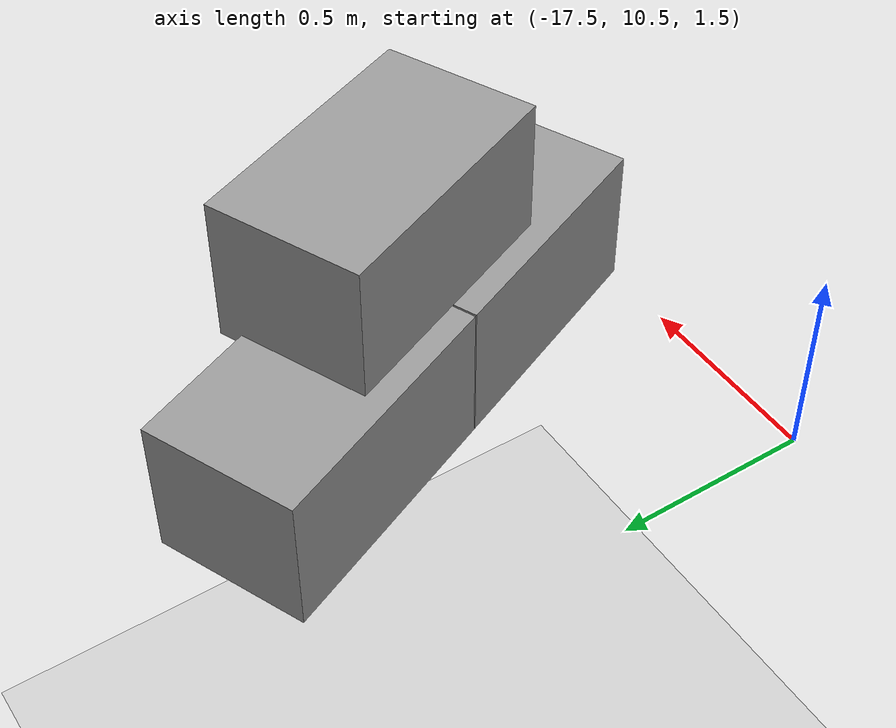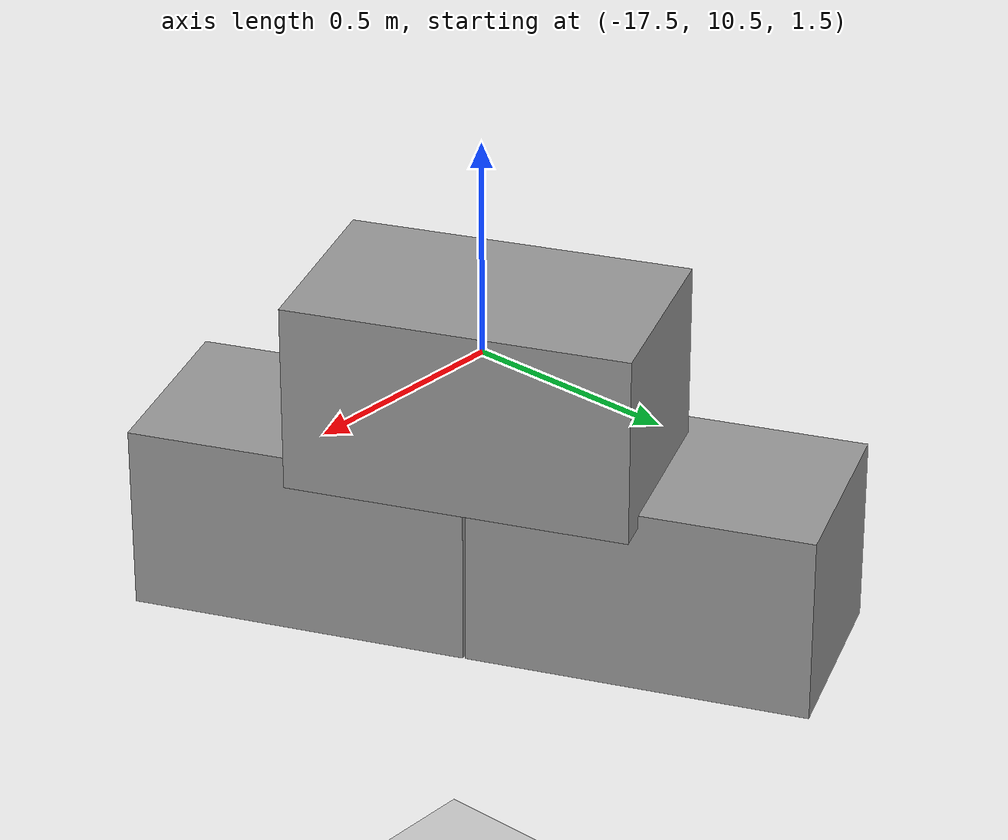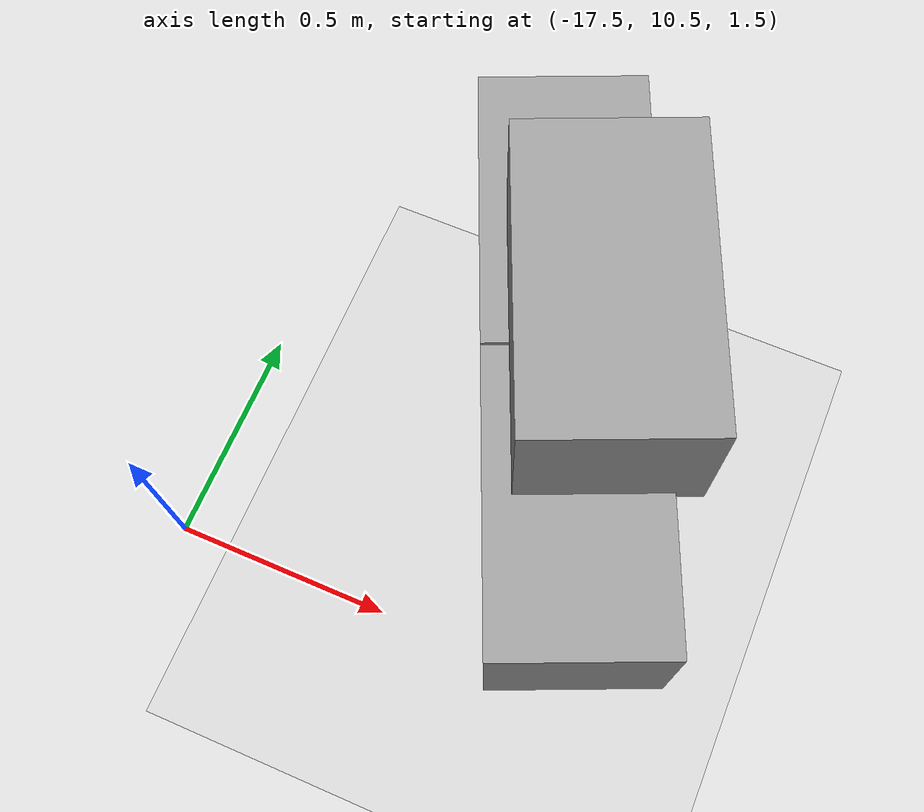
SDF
<sdf version="1.7">
 <world name="default">
  <model name="ground_plane">
   <static>1</static>
   <link name="link">
    <collision name="collision">
     <geometry><plane><normal>0 0 1</normal><size>100 100</size></plane></geometry>
     <surface>
      <contact><collide_bitmask>65535</collide_bitmask></contact>
      <friction><ode><mu>100</mu><mu2>50</mu2></ode></friction>
     </surface>
    </collision>
    <visual name="visual">
     <cast_shadows>0</cast_shadows>
     <geometry><plane><normal>0 0 1</normal><size>100 100</size></plane></geometry>
     <material>
      <script><uri>file://media/materials/scripts/gazebo.material</uri><name>Gazebo/Grey</name></script>
     </material>
    </visual>
   </link>
  </model>
  <model name="Add_Box_clone_clone_3_clone">
   <link name="link">
    <inertial>
     <mass>1</mass>
     <inertia>
      <ixx>0.166667</ixx>
      <ixy>0</ixy>
      <ixz>0</ixz>
      <iyy>0.166667</iyy>
      <iyz>0</iyz>
      <izz>0.166667</izz>
     </inertia>
    </inertial>
    <kinematic>1</kinematic>
    <gravity>0</gravity>
    <visual name="visual">
     <geometry><box><size>0.686 0.406 0.381</size></box></geometry>
     <material>
      <script><name>Gazebo/Grey</name><uri>file://media/materials/scripts/gazebo.material</uri></script>
      <shader type="pixel"><normal_map>__default__</normal_map></shader>
      <ambient>0.3 0.3 0.3 1</ambient>
      <diffuse>0.7 0.7 0.7 1</diffuse>
      <specular>0.01 0.01 0.01 1</specular>
      <emissive>0 0 0 1</emissive>
     </material>
    </visual>
    <collision name="collision">
     <geometry><box><size>1 1 1</size></box></geometry>
     <surface>
      <friction>
       <ode><mu>1</mu><mu2>1</mu2><fdir1>0 0 0</fdir1><slip1>0</slip1><slip2>0</slip2></ode>
       <torsional>
        <coefficient>1</coefficient>
        <patch_radius>0</patch_radius>
        <surface_radius>0</surface_radius>
        <use_patch_radius>1</use_patch_radius>
        <ode><slip>0</slip></ode>
       </torsional>
      </friction>
      <bounce><restitution_coefficient>0</restitution_coefficient><threshold>1e+06</threshold></bounce>
      <contact>
       <collide_without_contact>0</collide_without_contact>
       <collide_without_contact_bitmask>1</collide_without_contact_bitmask>
       <collide_bitmask>1</collide_bitmask>
       <ode>
        <soft_cfm>0</soft_cfm>
        <soft_erp>0.2</soft_erp>
        <kp>1e+13</kp>
        <kd>1</kd>
        <max_vel>0.01</max_vel>
        <min_depth>0</min_depth>
       </ode>
       <bullet>
        <split_impulse>1</split_impulse>
        <split_impulse_penetration_threshold>-0.01</split_impulse_penetration_threshold>
        <soft_cfm>0</soft_cfm>
        <soft_erp>0.2</soft_erp>
        <kp>1e+13</kp>
        <kd>1</kd>
       </bullet>
      </contact>
     </surface>
    </collision>
   </link>
   <link name="link_clone">
    <inertial>
     <mass>1</mass>
     <inertia>
      <ixx>0.166667</ixx>
      <ixy>0</ixy>
      <ixz>0</ixz>
      <iyy>0.166667</iyy>
      <iyz>0</iyz>
      <izz>0.166667</izz>
     </inertia>
    </inertial>
    <pose>-0.343354 -0.063316 0.354303 1e-05 -0 0</pose>
    <gravity>0</gravity>
    <visual name="visual">
     <geometry><box><size>0.686 0.406 0.381</size></box></geometry>
     <material>
      <script><name>Gazebo/Grey</name><uri>file://media/materials/scripts/gazebo.material</uri></script>
      <shader type="pixel"><normal_map>__default__</normal_map></shader>
      <ambient>0.3 0.3 0.3 1</ambient>
      <diffuse>0.7 0.7 0.7 1</diffuse>
      <specular>0.01 0.01 0.01 1</specular>
      <emissive>0 0 0 1</emissive>
     </material>
    </visual>
    <collision name="collision">
     <geometry><box><size>1 1 1</size></box></geometry>
     <surface>
      <friction>
       <ode><mu>1</mu><mu2>1</mu2><fdir1>0 0 0</fdir1><slip1>0</slip1><slip2>0</slip2></ode>
       <torsional>
        <coefficient>1</coefficient>
        <patch_radius>0</patch_radius>
        <surface_radius>0</surface_radius>
        <use_patch_radius>1</use_patch_radius>
        <ode><slip>0</slip></ode>
       </torsional>
      </friction>
      <bounce><restitution_coefficient>0</restitution_coefficient><threshold>1e+06</threshold></bounce>
      <contact>
       <collide_without_contact>0</collide_without_contact>
       <collide_without_contact_bitmask>1</collide_without_contact_bitmask>
       <collide_bitmask>1</collide_bitmask>
       <ode>
        <soft_cfm>0</soft_cfm>
        <soft_erp>0.2</soft_erp>
        <kp>1e+13</kp>
        <kd>1</kd>
        <max_vel>0.01</max_vel>
        <min_depth>0</min_depth>
       </ode>
       <bullet>
        <split_impulse>1</split_impulse>
        <split_impulse_penetration_threshold>-0.01</split_impulse_penetration_threshold>
        <soft_cfm>0</soft_cfm>
        <soft_erp>0.2</soft_erp>
        <kp>1e+13</kp>
        <kd>1</kd>
       </bullet>
      </contact>
     </surface>
    </collision>
   </link>
   <link name="link_clone_clone">
    <inertial>
     <mass>1</mass>
     <inertia>
      <ixx>0.166667</ixx>
      <ixy>0</ixy>
      <ixz>0</ixz>
      <iyy>0.166667</iyy>
      <iyz>0</iyz>
      <izz>0.166667</izz>
     </inertia>
    </inertial>
    <pose>-0.690786 -0.000183 -1e-05 2e-05 -0 0</pose>
    <gravity>0</gravity>
    <visual name="visual">
     <geometry><box><size>0.686 0.406 0.381</size></box></geometry>
     <material>
      <script><name>Gazebo/Grey</name><uri>file://media/materials/scripts/gazebo.material</uri></script>
      <shader type="pixel"><normal_map>__default__</normal_map></shader>
      <ambient>0.3 0.3 0.3 1</ambient>
      <diffuse>0.7 0.7 0.7 1</diffuse>
      <specular>0.01 0.01 0.01 1</specular>
      <emissive>0 0 0 1</emissive>
     </material>
    </visual>
    <collision name="collision">
     <geometry><box><size>1 1 1</size></box></geometry>
     <surface>
      <friction>
       <ode><mu>1</mu><mu2>1</mu2><fdir1>0 0 0</fdir1><slip1>0</slip1><slip2>0</slip2></ode>
       <torsional>
        <coefficient>1</coefficient>
        <patch_radius>0</patch_radius>
        <surface_radius>0</surface_radius>
        <use_patch_radius>1</use_patch_radius>
        <ode><slip>0</slip></ode>
       </torsional>
      </friction>
      <bounce><restitution_coefficient>0</restitution_coefficient><threshold>1e+06</threshold></bounce>
      <contact>
       <collide_without_contact>0</collide_without_contact>
       <collide_without_contact_bitmask>1</collide_without_contact_bitmask>
       <collide_bitmask>1</collide_bitmask>
       <ode>
        <soft_cfm>0</soft_cfm>
        <soft_erp>0.2</soft_erp>
        <kp>1e+13</kp>
        <kd>1</kd>
        <max_vel>0.01</max_vel>
        <min_depth>0</min_depth>
       </ode>
       <bullet>
        <split_impulse>1</split_impulse>
        <split_impulse_penetration_threshold>-0.01</split_impulse_penetration_threshold>
        <soft_cfm>0</soft_cfm>
        <soft_erp>0.2</soft_erp>
        <kp>1e+13</kp>
        <kd>1</kd>
       </bullet>
      </contact>
     </surface>
    </collision>
   </link>
   <static>0</static>
   <pose>-16.9502 11.4681 1.61518 0 -0 1.97663</pose>
  </model>
 </world>
</sdf>
